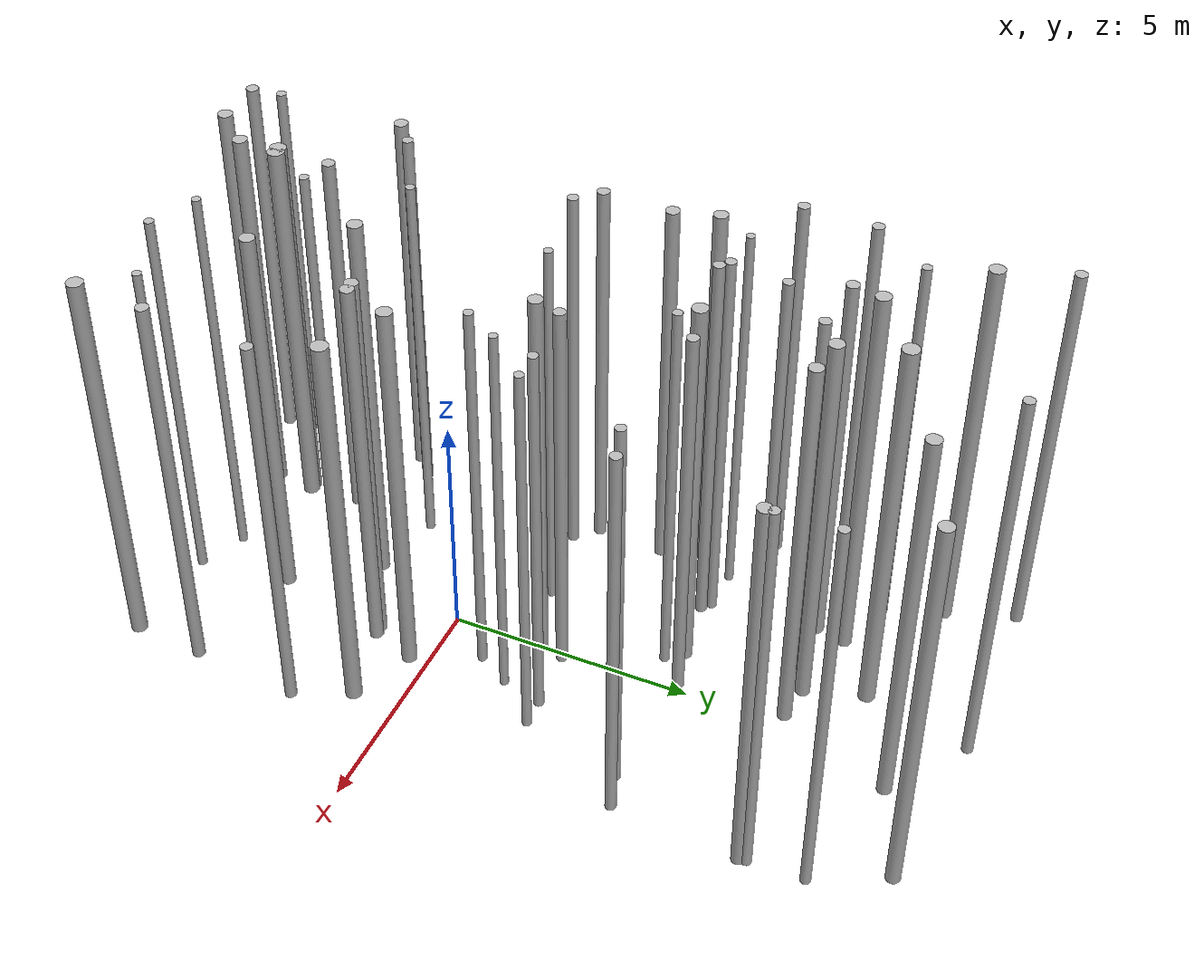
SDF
<sdf version="1.4">
 <world name="default">
  <model name="forest">
   <static>true</static>
   <link name="tree0">
    <pose>-9.773429682455806 5.247397896660836 0 0 0 3.466505031434475</pose>
    <visual name="visual">
     <material>
      <script><uri>model://tree_simple/scripts</uri><uri>model://tree_simple/materials/textures</uri></script>
     </material>
     <geometry><cylinder><radius>0.1388654602068803</radius><length>10</length></cylinder></geometry>
    </visual>
    <collision name="collision">
     <geometry><cylinder><radius>0.1388654602068803</radius><length>10</length></cylinder></geometry>
     <max_contacts>0</max_contacts>
    </collision>
   </link>
   <link name="tree2">
    <pose>-5.4064469025719415 9.711428157303608 0 0 0 1.5143166995413018</pose>
    <visual name="visual">
     <material>
      <script><uri>model://tree_simple/scripts</uri><uri>model://tree_simple/materials/textures</uri></script>
     </material>
     <geometry><cylinder><radius>0.1300606085527599</radius><length>10</length></cylinder></geometry>
    </visual>
    <collision name="collision">
     <geometry><cylinder><radius>0.1300606085527599</radius><length>10</length></cylinder></geometry>
     <max_contacts>0</max_contacts>
    </collision>
   </link>
   <link name="tree8">
    <pose>-6.991985141477388 -4.492147212250934 0 0 0 6.0394985109483</pose>
    <visual name="visual">
     <material>
      <script><uri>model://tree_simple/scripts</uri><uri>model://tree_simple/materials/textures</uri></script>
     </material>
     <geometry><cylinder><radius>0.10991033867611255</radius><length>10</length></cylinder></geometry>
    </visual>
    <collision name="collision">
     <geometry><cylinder><radius>0.10991033867611255</radius><length>10</length></cylinder></geometry>
     <max_contacts>0</max_contacts>
    </collision>
   </link>
   <link name="tree11">
    <pose>-0.5084644445341269 7.6681118731108775 0 0 0 1.5870396002715115</pose>
    <visual name="visual">
     <material>
      <script><uri>model://tree_simple/scripts</uri><uri>model://tree_simple/materials/textures</uri></script>
     </material>
     <geometry><cylinder><radius>0.11830573273129447</radius><length>10</length></cylinder></geometry>
    </visual>
    <collision name="collision">
     <geometry><cylinder><radius>0.11830573273129447</radius><length>10</length></cylinder></geometry>
     <max_contacts>0</max_contacts>
    </collision>
   </link>
   <link name="tree17">
    <pose>-1.8525603344200867 -8.138717185137432 0 0 0 0.30577025751953457</pose>
    <visual name="visual">
     <material>
      <script><uri>model://tree_simple/scripts</uri><uri>model://tree_simple/materials/textures</uri></script>
     </material>
     <geometry><cylinder><radius>0.10201258184106664</radius><length>10</length></cylinder></geometry>
    </visual>
    <collision name="collision">
     <geometry><cylinder><radius>0.10201258184106664</radius><length>10</length></cylinder></geometry>
     <max_contacts>0</max_contacts>
    </collision>
   </link>
   <link name="tree21">
    <pose>-1.2792182799969005 -3.5066461217228273 0 0 0 4.216767107665724</pose>
    <visual name="visual">
     <material>
      <script><uri>model://tree_simple/scripts</uri><uri>model://tree_simple/materials/textures</uri></script>
     </material>
     <geometry><cylinder><radius>0.19226336805044184</radius><length>10</length></cylinder></geometry>
    </visual>
    <collision name="collision">
     <geometry><cylinder><radius>0.19226336805044184</radius><length>10</length></cylinder></geometry>
     <max_contacts>0</max_contacts>
    </collision>
   </link>
   <link name="tree22">
    <pose>-2.795831275227436 -2.8778768115663738 0 0 0 5.525269193240173</pose>
    <visual name="visual">
     <material>
      <script><uri>model://tree_simple/scripts</uri><uri>model://tree_simple/materials/textures</uri></script>
     </material>
     <geometry><cylinder><radius>0.17609308650252975</radius><length>10</length></cylinder></geometry>
    </visual>
    <collision name="collision">
     <geometry><cylinder><radius>0.17609308650252975</radius><length>10</length></cylinder></geometry>
     <max_contacts>0</max_contacts>
    </collision>
   </link>
   <link name="tree23">
    <pose>-9.850260615347326 9.59205876471766 0 0 0 2.709738647812943</pose>
    <visual name="visual">
     <material>
      <script><uri>model://tree_simple/scripts</uri><uri>model://tree_simple/materials/textures</uri></script>
     </material>
     <geometry><cylinder><radius>0.13971300150740174</radius><length>10</length></cylinder></geometry>
    </visual>
    <collision name="collision">
     <geometry><cylinder><radius>0.13971300150740174</radius><length>10</length></cylinder></geometry>
     <max_contacts>0</max_contacts>
    </collision>
   </link>
   <link name="tree25">
    <pose>-1.3283359357505766 9.315356267903535 0 0 0 3.7652451533162674</pose>
    <visual name="visual">
     <material>
      <script><uri>model://tree_simple/scripts</uri><uri>model://tree_simple/materials/textures</uri></script>
     </material>
     <geometry><cylinder><radius>0.16723551905020445</radius><length>10</length></cylinder></geometry>
    </visual>
    <collision name="collision">
     <geometry><cylinder><radius>0.16723551905020445</radius><length>10</length></cylinder></geometry>
     <max_contacts>0</max_contacts>
    </collision>
   </link>
   <link name="tree26">
    <pose>-6.171636069599824 5.321578380592733 0 0 0 1.8777993484546154</pose>
    <visual name="visual">
     <material>
      <script><uri>model://tree_simple/scripts</uri><uri>model://tree_simple/materials/textures</uri></script>
     </material>
     <geometry><cylinder><radius>0.13471695518724897</radius><length>10</length></cylinder></geometry>
    </visual>
    <collision name="collision">
     <geometry><cylinder><radius>0.13471695518724897</radius><length>10</length></cylinder></geometry>
     <max_contacts>0</max_contacts>
    </collision>
   </link>
   <link name="tree27">
    <pose>-8.517407295435026 1.0523842967565997 0 0 0 3.3690835139014315</pose>
    <visual name="visual">
     <material>
      <script><uri>model://tree_simple/scripts</uri><uri>model://tree_simple/materials/textures</uri></script>
     </material>
     <geometry><cylinder><radius>0.16132186972619722</radius><length>10</length></cylinder></geometry>
    </visual>
    <collision name="collision">
     <geometry><cylinder><radius>0.16132186972619722</radius><length>10</length></cylinder></geometry>
     <max_contacts>0</max_contacts>
    </collision>
   </link>
   <link name="tree29">
    <pose>-7.114781203352867 -8.862260335469765 0 0 0 5.658507405858945</pose>
    <visual name="visual">
     <material>
      <script><uri>model://tree_simple/scripts</uri><uri>model://tree_simple/materials/textures</uri></script>
     </material>
     <geometry><cylinder><radius>0.17525695892550533</radius><length>10</length></cylinder></geometry>
    </visual>
    <collision name="collision">
     <geometry><cylinder><radius>0.17525695892550533</radius><length>10</length></cylinder></geometry>
     <max_contacts>0</max_contacts>
    </collision>
   </link>
   <link name="tree31">
    <pose>-9.109490209944662 -9.726238127267395 0 0 0 4.145382205207745</pose>
    <visual name="visual">
     <material>
      <script><uri>model://tree_simple/scripts</uri><uri>model://tree_simple/materials/textures</uri></script>
     </material>
     <geometry><cylinder><radius>0.14995369969946465</radius><length>10</length></cylinder></geometry>
    </visual>
    <collision name="collision">
     <geometry><cylinder><radius>0.14995369969946465</radius><length>10</length></cylinder></geometry>
     <max_contacts>0</max_contacts>
    </collision>
   </link>
   <link name="tree32">
    <pose>-7.162245499818864 -7.906564316240661 0 0 0 0.8264767433906112</pose>
    <visual name="visual">
     <material>
      <script><uri>model://tree_simple/scripts</uri><uri>model://tree_simple/materials/textures</uri></script>
     </material>
     <geometry><cylinder><radius>0.19661025026141418</radius><length>10</length></cylinder></geometry>
    </visual>
    <collision name="collision">
     <geometry><cylinder><radius>0.19661025026141418</radius><length>10</length></cylinder></geometry>
     <max_contacts>0</max_contacts>
    </collision>
   </link>
   <link name="tree34">
    <pose>-8.798724210099468 2.0440444268668028 0 0 0 4.355787504584963</pose>
    <visual name="visual">
     <material>
      <script><uri>model://tree_simple/scripts</uri><uri>model://tree_simple/materials/textures</uri></script>
     </material>
     <geometry><cylinder><radius>0.16797767522005777</radius><length>10</length></cylinder></geometry>
    </visual>
    <collision name="collision">
     <geometry><cylinder><radius>0.16797767522005777</radius><length>10</length></cylinder></geometry>
     <max_contacts>0</max_contacts>
    </collision>
   </link>
   <link name="tree35">
    <pose>-0.4614850548395726 6.356049060711719 0 0 0 0.0057667852731482115</pose>
    <visual name="visual">
     <material>
      <script><uri>model://tree_simple/scripts</uri><uri>model://tree_simple/materials/textures</uri></script>
     </material>
     <geometry><cylinder><radius>0.12302155092867992</radius><length>10</length></cylinder></geometry>
    </visual>
    <collision name="collision">
     <geometry><cylinder><radius>0.12302155092867992</radius><length>10</length></cylinder></geometry>
     <max_contacts>0</max_contacts>
    </collision>
   </link>
   <link name="tree37">
    <pose>-3.5484765536570384 8.392189031830625 0 0 0 0.5145661782273383</pose>
    <visual name="visual">
     <material>
      <script><uri>model://tree_simple/scripts</uri><uri>model://tree_simple/materials/textures</uri></script>
     </material>
     <geometry><cylinder><radius>0.1704122387532528</radius><length>10</length></cylinder></geometry>
    </visual>
    <collision name="collision">
     <geometry><cylinder><radius>0.1704122387532528</radius><length>10</length></cylinder></geometry>
     <max_contacts>0</max_contacts>
    </collision>
   </link>
   <link name="tree40">
    <pose>-8.637331956003393 -5.4216701438390125 0 0 0 4.557245741629621</pose>
    <visual name="visual">
     <material>
      <script><uri>model://tree_simple/scripts</uri><uri>model://tree_simple/materials/textures</uri></script>
     </material>
     <geometry><cylinder><radius>0.1304382719131789</radius><length>10</length></cylinder></geometry>
    </visual>
    <collision name="collision">
     <geometry><cylinder><radius>0.1304382719131789</radius><length>10</length></cylinder></geometry>
     <max_contacts>0</max_contacts>
    </collision>
   </link>
   <link name="tree41">
    <pose>-0.6754480016864317 -4.805673225571021 0 0 0 5.398025955087466</pose>
    <visual name="visual">
     <material>
      <script><uri>model://tree_simple/scripts</uri><uri>model://tree_simple/materials/textures</uri></script>
     </material>
     <geometry><cylinder><radius>0.13718773511902865</radius><length>10</length></cylinder></geometry>
    </visual>
    <collision name="collision">
     <geometry><cylinder><radius>0.13718773511902865</radius><length>10</length></cylinder></geometry>
     <max_contacts>0</max_contacts>
    </collision>
   </link>
   <link name="tree42">
    <pose>-4.682932827826518 5.663900070194515 0 0 0 5.081046346851668</pose>
    <visual name="visual">
     <material>
      <script><uri>model://tree_simple/scripts</uri><uri>model://tree_simple/materials/textures</uri></script>
     </material>
     <geometry><cylinder><radius>0.1665691054441199</radius><length>10</length></cylinder></geometry>
    </visual>
    <collision name="collision">
     <geometry><cylinder><radius>0.1665691054441199</radius><length>10</length></cylinder></geometry>
     <max_contacts>0</max_contacts>
    </collision>
   </link>
   <link name="tree43">
    <pose>-7.894741608490056 -9.717089883960025 0 0 0 1.0546322039895106</pose>
    <visual name="visual">
     <material>
      <script><uri>model://tree_simple/scripts</uri><uri>model://tree_simple/materials/textures</uri></script>
     </material>
     <geometry><cylinder><radius>0.17599147095086873</radius><length>10</length></cylinder></geometry>
    </visual>
    <collision name="collision">
     <geometry><cylinder><radius>0.17599147095086873</radius><length>10</length></cylinder></geometry>
     <max_contacts>0</max_contacts>
    </collision>
   </link>
   <link name="tree46">
    <pose>-3.55693975067918 -8.951841614093944 0 0 0 1.7466015940767834</pose>
    <visual name="visual">
     <material>
      <script><uri>model://tree_simple/scripts</uri><uri>model://tree_simple/materials/textures</uri></script>
     </material>
     <geometry><cylinder><radius>0.11121429945729142</radius><length>10</length></cylinder></geometry>
    </visual>
    <collision name="collision">
     <geometry><cylinder><radius>0.11121429945729142</radius><length>10</length></cylinder></geometry>
     <max_contacts>0</max_contacts>
    </collision>
   </link>
   <link name="tree49">
    <pose>-2.087781927819867 0.47040652109716596 0 0 0 4.058229647518398</pose>
    <visual name="visual">
     <material>
      <script><uri>model://tree_simple/scripts</uri><uri>model://tree_simple/materials/textures</uri></script>
     </material>
     <geometry><cylinder><radius>0.10935190705930745</radius><length>10</length></cylinder></geometry>
    </visual>
    <collision name="collision">
     <geometry><cylinder><radius>0.10935190705930745</radius><length>10</length></cylinder></geometry>
     <max_contacts>0</max_contacts>
    </collision>
   </link>
   <link name="tree52">
    <pose>-8.576324764450721 -0.5985956831465025 0 0 0 3.5661100042192886</pose>
    <visual name="visual">
     <material>
      <script><uri>model://tree_simple/scripts</uri><uri>model://tree_simple/materials/textures</uri></script>
     </material>
     <geometry><cylinder><radius>0.14610361606077127</radius><length>10</length></cylinder></geometry>
    </visual>
    <collision name="collision">
     <geometry><cylinder><radius>0.14610361606077127</radius><length>10</length></cylinder></geometry>
     <max_contacts>0</max_contacts>
    </collision>
   </link>
   <link name="tree53">
    <pose>-3.475751728251721 -1.3233639951617704 0 0 0 0.5188397870203074</pose>
    <visual name="visual">
     <material>
      <script><uri>model://tree_simple/scripts</uri><uri>model://tree_simple/materials/textures</uri></script>
     </material>
     <geometry><cylinder><radius>0.11067354524459494</radius><length>10</length></cylinder></geometry>
    </visual>
    <collision name="collision">
     <geometry><cylinder><radius>0.11067354524459494</radius><length>10</length></cylinder></geometry>
     <max_contacts>0</max_contacts>
    </collision>
   </link>
   <link name="tree54">
    <pose>-3.3854713488840122 -3.9587204457894787 0 0 0 0.6709356315070486</pose>
    <visual name="visual">
     <material>
      <script><uri>model://tree_simple/scripts</uri><uri>model://tree_simple/materials/textures</uri></script>
     </material>
     <geometry><cylinder><radius>0.15864648560706193</radius><length>10</length></cylinder></geometry>
    </visual>
    <collision name="collision">
     <geometry><cylinder><radius>0.15864648560706193</radius><length>10</length></cylinder></geometry>
     <max_contacts>0</max_contacts>
    </collision>
   </link>
   <link name="tree55">
    <pose>-9.308041361170922 7.972439417868177 0 0 0 0.6189575918861794</pose>
    <visual name="visual">
     <material>
      <script><uri>model://tree_simple/scripts</uri><uri>model://tree_simple/materials/textures</uri></script>
     </material>
     <geometry><cylinder><radius>0.18507954171715307</radius><length>10</length></cylinder></geometry>
    </visual>
    <collision name="collision">
     <geometry><cylinder><radius>0.18507954171715307</radius><length>10</length></cylinder></geometry>
     <max_contacts>0</max_contacts>
    </collision>
   </link>
   <link name="tree56">
    <pose>-0.4531493171565799 6.181121138427017 0 0 0 3.544327138087438</pose>
    <visual name="visual">
     <material>
      <script><uri>model://tree_simple/scripts</uri><uri>model://tree_simple/materials/textures</uri></script>
     </material>
     <geometry><cylinder><radius>0.1602970469041311</radius><length>10</length></cylinder></geometry>
    </visual>
    <collision name="collision">
     <geometry><cylinder><radius>0.1602970469041311</radius><length>10</length></cylinder></geometry>
     <max_contacts>0</max_contacts>
    </collision>
   </link>
   <link name="tree58">
    <pose>-6.079305362215182 -0.7595197120915245 0 0 0 5.560820534759233</pose>
    <visual name="visual">
     <material>
      <script><uri>model://tree_simple/scripts</uri><uri>model://tree_simple/materials/textures</uri></script>
     </material>
     <geometry><cylinder><radius>0.10762536063558598</radius><length>10</length></cylinder></geometry>
    </visual>
    <collision name="collision">
     <geometry><cylinder><radius>0.10762536063558598</radius><length>10</length></cylinder></geometry>
     <max_contacts>0</max_contacts>
    </collision>
   </link>
   <link name="tree59">
    <pose>-3.1612716602366575 -3.930840547389085 0 0 0 4.6404179133320955</pose>
    <visual name="visual">
     <material>
      <script><uri>model://tree_simple/scripts</uri><uri>model://tree_simple/materials/textures</uri></script>
     </material>
     <geometry><cylinder><radius>0.15888918131143062</radius><length>10</length></cylinder></geometry>
    </visual>
    <collision name="collision">
     <geometry><cylinder><radius>0.15888918131143062</radius><length>10</length></cylinder></geometry>
     <max_contacts>0</max_contacts>
    </collision>
   </link>
   <link name="tree61">
    <pose>-7.293281364289943 2.8567436666552624 0 0 0 2.3644685017248013</pose>
    <visual name="visual">
     <material>
      <script><uri>model://tree_simple/scripts</uri><uri>model://tree_simple/materials/textures</uri></script>
     </material>
     <geometry><cylinder><radius>0.1253545576743294</radius><length>10</length></cylinder></geometry>
    </visual>
    <collision name="collision">
     <geometry><cylinder><radius>0.1253545576743294</radius><length>10</length></cylinder></geometry>
     <max_contacts>0</max_contacts>
    </collision>
   </link>
   <link name="tree62">
    <pose>-4.2497037333871095 0.3450271850604132 0 0 0 4.160553018453424</pose>
    <visual name="visual">
     <material>
      <script><uri>model://tree_simple/scripts</uri><uri>model://tree_simple/materials/textures</uri></script>
     </material>
     <geometry><cylinder><radius>0.1400022531713113</radius><length>10</length></cylinder></geometry>
    </visual>
    <collision name="collision">
     <geometry><cylinder><radius>0.1400022531713113</radius><length>10</length></cylinder></geometry>
     <max_contacts>0</max_contacts>
    </collision>
   </link>
   <link name="tree72">
    <pose>-3.887889138435227 -6.734467746835088 0 0 0 5.879607080814446</pose>
    <visual name="visual">
     <material>
      <script><uri>model://tree_simple/scripts</uri><uri>model://tree_simple/materials/textures</uri></script>
     </material>
     <geometry><cylinder><radius>0.175194703535874</radius><length>10</length></cylinder></geometry>
    </visual>
    <collision name="collision">
     <geometry><cylinder><radius>0.175194703535874</radius><length>10</length></cylinder></geometry>
     <max_contacts>0</max_contacts>
    </collision>
   </link>
   <link name="tree73">
    <pose>-8.087333853513526 -1.1043742851610467 0 0 0 1.1895688933954272</pose>
    <visual name="visual">
     <material>
      <script><uri>model://tree_simple/scripts</uri><uri>model://tree_simple/materials/textures</uri></script>
     </material>
     <geometry><cylinder><radius>0.13218383282187873</radius><length>10</length></cylinder></geometry>
    </visual>
    <collision name="collision">
     <geometry><cylinder><radius>0.13218383282187873</radius><length>10</length></cylinder></geometry>
     <max_contacts>0</max_contacts>
    </collision>
   </link>
   <link name="tree74">
    <pose>-7.011268750142148 -7.873777808271544 0 0 0 1.7945505681736378</pose>
    <visual name="visual">
     <material>
      <script><uri>model://tree_simple/scripts</uri><uri>model://tree_simple/materials/textures</uri></script>
     </material>
     <geometry><cylinder><radius>0.19858531757031767</radius><length>10</length></cylinder></geometry>
    </visual>
    <collision name="collision">
     <geometry><cylinder><radius>0.19858531757031767</radius><length>10</length></cylinder></geometry>
     <max_contacts>0</max_contacts>
    </collision>
   </link>
   <link name="tree76">
    <pose>-5.5395413372156455 2.878762000313891 0 0 0 3.3468555178049586</pose>
    <visual name="visual">
     <material>
      <script><uri>model://tree_simple/scripts</uri><uri>model://tree_simple/materials/textures</uri></script>
     </material>
     <geometry><cylinder><radius>0.18259975260627498</radius><length>10</length></cylinder></geometry>
    </visual>
    <collision name="collision">
     <geometry><cylinder><radius>0.18259975260627498</radius><length>10</length></cylinder></geometry>
     <max_contacts>0</max_contacts>
    </collision>
   </link>
   <link name="tree77">
    <pose>-7.568619144860995 5.42794796160311 0 0 0 4.930766161484001</pose>
    <visual name="visual">
     <material>
      <script><uri>model://tree_simple/scripts</uri><uri>model://tree_simple/materials/textures</uri></script>
     </material>
     <geometry><cylinder><radius>0.14760679455028292</radius><length>10</length></cylinder></geometry>
    </visual>
    <collision name="collision">
     <geometry><cylinder><radius>0.14760679455028292</radius><length>10</length></cylinder></geometry>
     <max_contacts>0</max_contacts>
    </collision>
   </link>
   <link name="tree79">
    <pose>-9.184603509339142 -9.002300768853251 0 0 0 0.05304853269903064</pose>
    <visual name="visual">
     <material>
      <script><uri>model://tree_simple/scripts</uri><uri>model://tree_simple/materials/textures</uri></script>
     </material>
     <geometry><cylinder><radius>0.11732122955735938</radius><length>10</length></cylinder></geometry>
    </visual>
    <collision name="collision">
     <geometry><cylinder><radius>0.11732122955735938</radius><length>10</length></cylinder></geometry>
     <max_contacts>0</max_contacts>
    </collision>
   </link>
   <link name="tree81">
    <pose>-6.380334691743858 -6.7887365546642275 0 0 0 5.383267964490903</pose>
    <visual name="visual">
     <material>
      <script><uri>model://tree_simple/scripts</uri><uri>model://tree_simple/materials/textures</uri></script>
     </material>
     <geometry><cylinder><radius>0.11339813507123332</radius><length>10</length></cylinder></geometry>
    </visual>
    <collision name="collision">
     <geometry><cylinder><radius>0.11339813507123332</radius><length>10</length></cylinder></geometry>
     <max_contacts>0</max_contacts>
    </collision>
   </link>
   <link name="tree82">
    <pose>-7.119171066548207 4.195372968343541 0 0 0 3.0457887169251197</pose>
    <visual name="visual">
     <material>
      <script><uri>model://tree_simple/scripts</uri><uri>model://tree_simple/materials/textures</uri></script>
     </material>
     <geometry><cylinder><radius>0.12766197251815398</radius><length>10</length></cylinder></geometry>
    </visual>
    <collision name="collision">
     <geometry><cylinder><radius>0.12766197251815398</radius><length>10</length></cylinder></geometry>
     <max_contacts>0</max_contacts>
    </collision>
   </link>
   <link name="tree88">
    <pose>-5.262811017998786 -4.910288727826506 0 0 0 3.1319863038210634</pose>
    <visual name="visual">
     <material>
      <script><uri>model://tree_simple/scripts</uri><uri>model://tree_simple/materials/textures</uri></script>
     </material>
     <geometry><cylinder><radius>0.17481991023966198</radius><length>10</length></cylinder></geometry>
    </visual>
    <collision name="collision">
     <geometry><cylinder><radius>0.17481991023966198</radius><length>10</length></cylinder></geometry>
     <max_contacts>0</max_contacts>
    </collision>
   </link>
   <link name="tree89">
    <pose>-2.746251251390186 0.4604421335206421 0 0 0 0.07875588681999617</pose>
    <visual name="visual">
     <material>
      <script><uri>model://tree_simple/scripts</uri><uri>model://tree_simple/materials/textures</uri></script>
     </material>
     <geometry><cylinder><radius>0.1182799037520769</radius><length>10</length></cylinder></geometry>
    </visual>
    <collision name="collision">
     <geometry><cylinder><radius>0.1182799037520769</radius><length>10</length></cylinder></geometry>
     <max_contacts>0</max_contacts>
    </collision>
   </link>
   <link name="tree90">
    <pose>-4.571087598964693 3.111776391041399 0 0 0 1.3978251333849079</pose>
    <visual name="visual">
     <material>
      <script><uri>model://tree_simple/scripts</uri><uri>model://tree_simple/materials/textures</uri></script>
     </material>
     <geometry><cylinder><radius>0.13748640835419632</radius><length>10</length></cylinder></geometry>
    </visual>
    <collision name="collision">
     <geometry><cylinder><radius>0.13748640835419632</radius><length>10</length></cylinder></geometry>
     <max_contacts>0</max_contacts>
    </collision>
   </link>
   <link name="tree92">
    <pose>-2.9968933251839758 -0.5328693870854693 0 0 0 5.752521437530568</pose>
    <visual name="visual">
     <material>
      <script><uri>model://tree_simple/scripts</uri><uri>model://tree_simple/materials/textures</uri></script>
     </material>
     <geometry><cylinder><radius>0.10166117955542855</radius><length>10</length></cylinder></geometry>
    </visual>
    <collision name="collision">
     <geometry><cylinder><radius>0.10166117955542855</radius><length>10</length></cylinder></geometry>
     <max_contacts>0</max_contacts>
    </collision>
   </link>
   <link name="tree96">
    <pose>-6.00873044803393 7.163686722760286 0 0 0 4.691751058179672</pose>
    <visual name="visual">
     <material>
      <script><uri>model://tree_simple/scripts</uri><uri>model://tree_simple/materials/textures</uri></script>
     </material>
     <geometry><cylinder><radius>0.19474776316258266</radius><length>10</length></cylinder></geometry>
    </visual>
    <collision name="collision">
     <geometry><cylinder><radius>0.19474776316258266</radius><length>10</length></cylinder></geometry>
     <max_contacts>0</max_contacts>
    </collision>
   </link>
   <link name="tree98">
    <pose>-7.086932396875429 2.6801637421764806 0 0 0 5.266511145993225</pose>
    <visual name="visual">
     <material>
      <script><uri>model://tree_simple/scripts</uri><uri>model://tree_simple/materials/textures</uri></script>
     </material>
     <geometry><cylinder><radius>0.13516907925509455</radius><length>10</length></cylinder></geometry>
    </visual>
    <collision name="collision">
     <geometry><cylinder><radius>0.13516907925509455</radius><length>10</length></cylinder></geometry>
     <max_contacts>0</max_contacts>
    </collision>
   </link>
   <link name="tree99">
    <pose>-0.9071894655127579 -7.400282591008769 0 0 0 2.298632151946769</pose>
    <visual name="visual">
     <material>
      <script><uri>model://tree_simple/scripts</uri><uri>model://tree_simple/materials/textures</uri></script>
     </material>
     <geometry><cylinder><radius>0.1487740446123601</radius><length>10</length></cylinder></geometry>
    </visual>
    <collision name="collision">
     <geometry><cylinder><radius>0.1487740446123601</radius><length>10</length></cylinder></geometry>
     <max_contacts>0</max_contacts>
    </collision>
   </link>
   <link name="tree100">
    <pose>-9.850330392358991 3.5478137914294 0 0 0 1.0159400344302336</pose>
    <visual name="visual">
     <material>
      <script><uri>model://tree_simple/scripts</uri><uri>model://tree_simple/materials/textures</uri></script>
     </material>
     <geometry><cylinder><radius>0.13968611413029486</radius><length>10</length></cylinder></geometry>
    </visual>
    <collision name="collision">
     <geometry><cylinder><radius>0.13968611413029486</radius><length>10</length></cylinder></geometry>
     <max_contacts>0</max_contacts>
    </collision>
   </link>
   <link name="tree101">
    <pose>-1.4345880165986316 2.9121966538530266 0 0 0 3.4699080009465555</pose>
    <visual name="visual">
     <material>
      <script><uri>model://tree_simple/scripts</uri><uri>model://tree_simple/materials/textures</uri></script>
     </material>
     <geometry><cylinder><radius>0.1190531108154719</radius><length>10</length></cylinder></geometry>
    </visual>
    <collision name="collision">
     <geometry><cylinder><radius>0.1190531108154719</radius><length>10</length></cylinder></geometry>
     <max_contacts>0</max_contacts>
    </collision>
   </link>
   <link name="tree102">
    <pose>-5.566372479032964 5.776193774124259 0 0 0 4.691222910633483</pose>
    <visual name="visual">
     <material>
      <script><uri>model://tree_simple/scripts</uri><uri>model://tree_simple/materials/textures</uri></script>
     </material>
     <geometry><cylinder><radius>0.17149108088309584</radius><length>10</length></cylinder></geometry>
    </visual>
    <collision name="collision">
     <geometry><cylinder><radius>0.17149108088309584</radius><length>10</length></cylinder></geometry>
     <max_contacts>0</max_contacts>
    </collision>
   </link>
   <link name="tree103">
    <pose>-1.0582909466851689 -9.124919772096087 0 0 0 1.9498864318432934</pose>
    <visual name="visual">
     <material>
      <script><uri>model://tree_simple/scripts</uri><uri>model://tree_simple/materials/textures</uri></script>
     </material>
     <geometry><cylinder><radius>0.1891145445249761</radius><length>10</length></cylinder></geometry>
    </visual>
    <collision name="collision">
     <geometry><cylinder><radius>0.1891145445249761</radius><length>10</length></cylinder></geometry>
     <max_contacts>0</max_contacts>
    </collision>
   </link>
   <link name="tree105">
    <pose>-0.6586398062733991 3.1523574006728055 0 0 0 5.538496999128089</pose>
    <visual name="visual">
     <material>
      <script><uri>model://tree_simple/scripts</uri><uri>model://tree_simple/materials/textures</uri></script>
     </material>
     <geometry><cylinder><radius>0.1292399641559732</radius><length>10</length></cylinder></geometry>
    </visual>
    <collision name="collision">
     <geometry><cylinder><radius>0.1292399641559732</radius><length>10</length></cylinder></geometry>
     <max_contacts>0</max_contacts>
    </collision>
   </link>
   <link name="tree109">
    <pose>-4.437188236743806 -0.277485749261535 0 0 0 5.938953294058607</pose>
    <visual name="visual">
     <material>
      <script><uri>model://tree_simple/scripts</uri><uri>model://tree_simple/materials/textures</uri></script>
     </material>
     <geometry><cylinder><radius>0.1674464197188932</radius><length>10</length></cylinder></geometry>
    </visual>
    <collision name="collision">
     <geometry><cylinder><radius>0.1674464197188932</radius><length>10</length></cylinder></geometry>
     <max_contacts>0</max_contacts>
    </collision>
   </link>
   <link name="tree110">
    <pose>-5.208506626706074 2.521730647628404 0 0 0 5.907032149900408</pose>
    <visual name="visual">
     <material>
      <script><uri>model://tree_simple/scripts</uri><uri>model://tree_simple/materials/textures</uri></script>
     </material>
     <geometry><cylinder><radius>0.1125585592310359</radius><length>10</length></cylinder></geometry>
    </visual>
    <collision name="collision">
     <geometry><cylinder><radius>0.1125585592310359</radius><length>10</length></cylinder></geometry>
     <max_contacts>0</max_contacts>
    </collision>
   </link>
   <link name="tree112">
    <pose>-8.772206045279153 6.627706032036439 0 0 0 1.2912699674059116</pose>
    <visual name="visual">
     <material>
      <script><uri>model://tree_simple/scripts</uri><uri>model://tree_simple/materials/textures</uri></script>
     </material>
     <geometry><cylinder><radius>0.11553052306752806</radius><length>10</length></cylinder></geometry>
    </visual>
    <collision name="collision">
     <geometry><cylinder><radius>0.11553052306752806</radius><length>10</length></cylinder></geometry>
     <max_contacts>0</max_contacts>
    </collision>
   </link>
   <link name="tree113">
    <pose>-7.443662687413122 6.124649535422503 0 0 0 3.996935951752162</pose>
    <visual name="visual">
     <material>
      <script><uri>model://tree_simple/scripts</uri><uri>model://tree_simple/materials/textures</uri></script>
     </material>
     <geometry><cylinder><radius>0.17861299387354881</radius><length>10</length></cylinder></geometry>
    </visual>
    <collision name="collision">
     <geometry><cylinder><radius>0.17861299387354881</radius><length>10</length></cylinder></geometry>
     <max_contacts>0</max_contacts>
    </collision>
   </link>
   <link name="tree114">
    <pose>-4.675708904946127 -8.479769098285189 0 0 0 4.255163944510529</pose>
    <visual name="visual">
     <material>
      <script><uri>model://tree_simple/scripts</uri><uri>model://tree_simple/materials/textures</uri></script>
     </material>
     <geometry><cylinder><radius>0.10482328647008192</radius><length>10</length></cylinder></geometry>
    </visual>
    <collision name="collision">
     <geometry><cylinder><radius>0.10482328647008192</radius><length>10</length></cylinder></geometry>
     <max_contacts>0</max_contacts>
    </collision>
   </link>
   <link name="tree115">
    <pose>-8.324581591794956 2.904804381220181 0 0 0 0.8993656448153171</pose>
    <visual name="visual">
     <material>
      <script><uri>model://tree_simple/scripts</uri><uri>model://tree_simple/materials/textures</uri></script>
     </material>
     <geometry><cylinder><radius>0.1000574133793133</radius><length>10</length></cylinder></geometry>
    </visual>
    <collision name="collision">
     <geometry><cylinder><radius>0.1000574133793133</radius><length>10</length></cylinder></geometry>
     <max_contacts>0</max_contacts>
    </collision>
   </link>
   <link name="tree116">
    <pose>-7.087456092063218 -6.578444985499705 0 0 0 4.967944281056169</pose>
    <visual name="visual">
     <material>
      <script><uri>model://tree_simple/scripts</uri><uri>model://tree_simple/materials/textures</uri></script>
     </material>
     <geometry><cylinder><radius>0.15258938984319317</radius><length>10</length></cylinder></geometry>
    </visual>
    <collision name="collision">
     <geometry><cylinder><radius>0.15258938984319317</radius><length>10</length></cylinder></geometry>
     <max_contacts>0</max_contacts>
    </collision>
   </link>
   <link name="tree117">
    <pose>-9.202091583892821 -5.886591885525232 0 0 0 1.9423112618442953</pose>
    <visual name="visual">
     <material>
      <script><uri>model://tree_simple/scripts</uri><uri>model://tree_simple/materials/textures</uri></script>
     </material>
     <geometry><cylinder><radius>0.16509632066583763</radius><length>10</length></cylinder></geometry>
    </visual>
    <collision name="collision">
     <geometry><cylinder><radius>0.16509632066583763</radius><length>10</length></cylinder></geometry>
     <max_contacts>0</max_contacts>
    </collision>
   </link>
  </model>
 </world>
</sdf>
